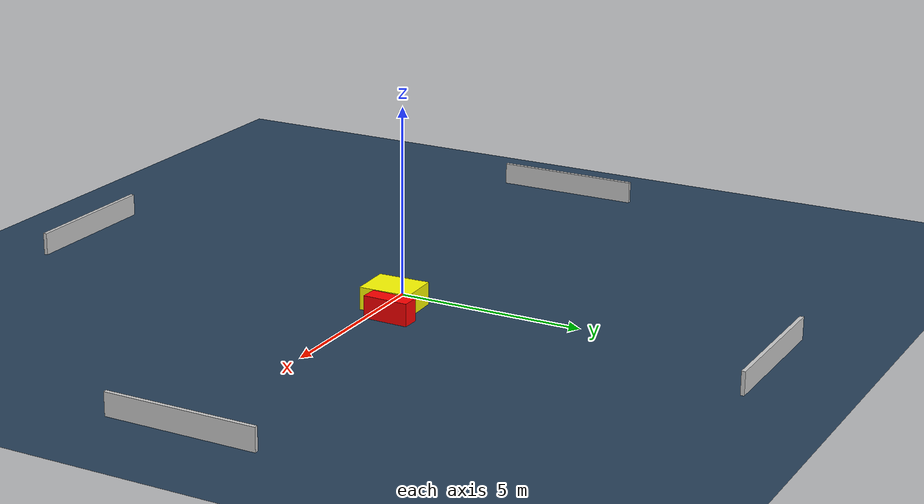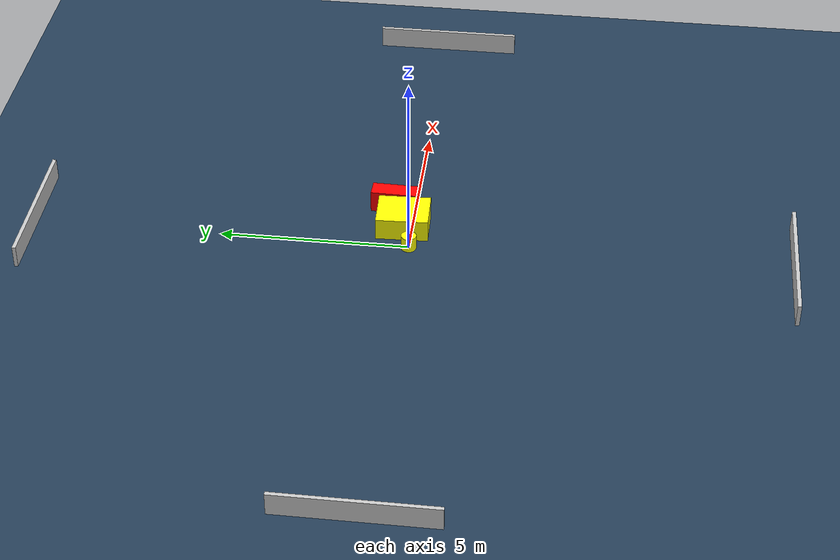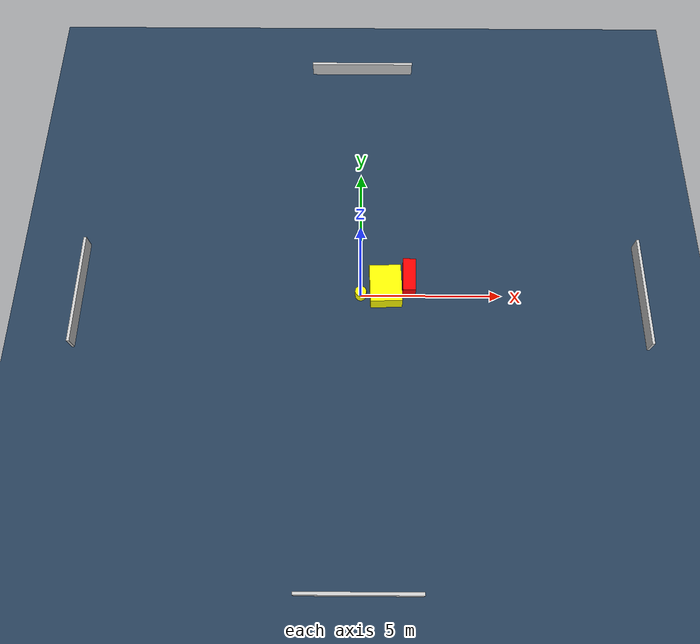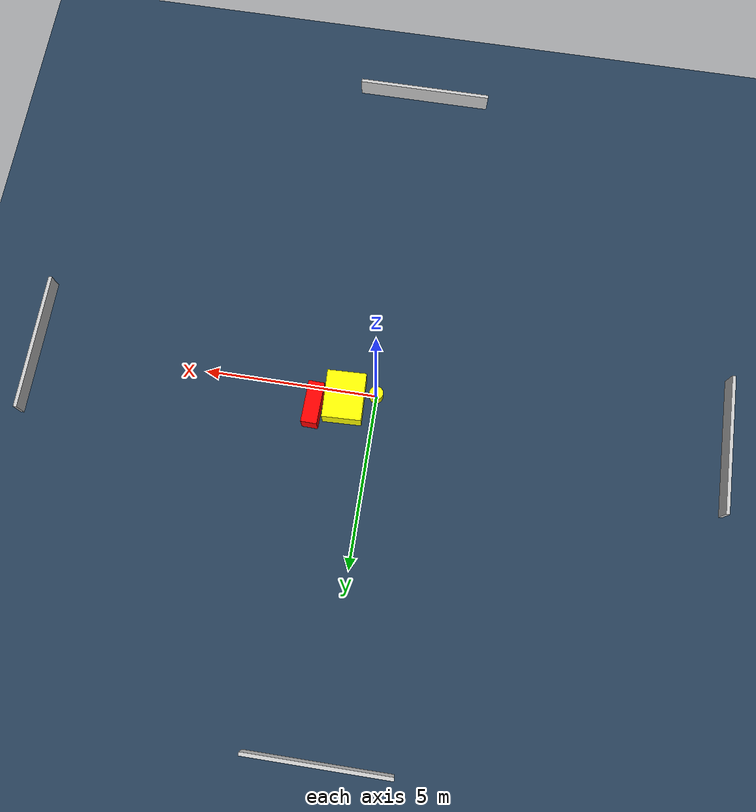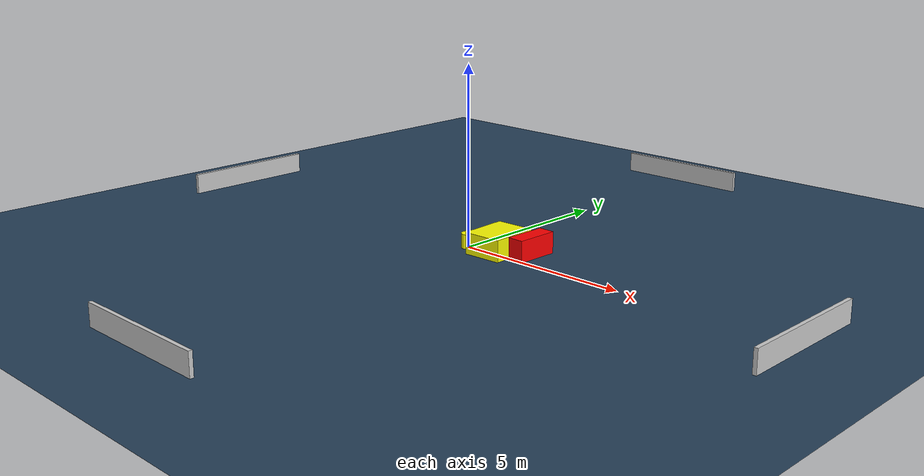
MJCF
<?xml version="1.0" ?>
<mujoco model="generated_environment">
  <option timestep="0.01" integrator="RK4" cone="elliptic"/>
  <default>
    <geom density="1"/>
  </default>
  <asset>
    <texture builtin="gradient" height="3072" name="skybox" rgb1="0.3 0.5 0.7" rgb2="0 0 0" type="skybox" width="512"/>
    <texture builtin="checker" height="300" name="groundplane" rgb1="0.2 0.3 0.4" rgb2="0.1 0.2 0.3" type="2d" width="300"/>
    <material name="groundplane" reflectance="0.2" texrepeat="5 5" texture="groundplane"/>
  </asset>
  <worldbody>
    <light dir="0 0 -1" directional="true" pos="0 0 1.5"/>
    <geom condim="3" friction="0.5 0.005 0.001" material="groundplane" name="floor" pos="0 0 0" size="0 0 0.05" type="plane"/>
    <body name="walls">
      <geom name="wall_1" condim="4" pos="-10.0 0.0 0.3" rgba="0.800000011920929 0.800000011920929 0.800000011920929 1.0" size="0.05 2.0 0.3" type="box"/>
      <geom name="wall_2" condim="4" pos="10.0 0.0 0.3" rgba="0.800000011920929 0.800000011920929 0.800000011920929 1.0" size="0.05 2.0 0.3" type="box"/>
      <geom name="wall_3" condim="4" pos="0.0 -10.0 0.3" rgba="0.800000011920929 0.800000011920929 0.800000011920929 1.0" size="2.0 0.05 0.3" type="box"/>
      <geom name="wall_4" condim="4" pos="0.0 10.0 0.3" rgba="0.800000011920929 0.800000011920929 0.800000011920929 1.0" size="2.0 0.05 0.3" type="box"/>
    </body>
    <body name="robot">
      <joint name="joint_x" type="slide" pos="0 0 0" axis="1 0 0"/>
      <joint name="joint_y" type="slide" pos="0 0 0" axis="0 1 0"/>
      <geom name="robot" type="cylinder" pos="0.0 0.0 0.2" size="0.2 0.2 0.0" mass="5.0" friction="1.0 0.005 0.0001" condim="4" rgba="1.0 1.0 0.0 1.0"/>
    </body>
    <body name="obstacle_1_movable">
      <geom name="obstacle_1_movable" condim="4" pos="0.881345832869295 0.24735975778053187 0.3" euler="0 0 272.10574192294933" friction="0.0 0.005 0.001" rgba="1.0 1.0 0.0 1.0" size="0.6937463094481036 0.5626074109349753 0.3" type="box" mass="0.1"/>
      <joint type="free"/>
    </body>
    <body name="obstacle_2_static">
      <geom name="obstacle_2_static" condim="4" pos="1.7272063891672045 0.588172587712435 0.3" euler="0 0 88.6592266724417" friction="0.0 0.005 0.001" rgba="1.0 0.0 0.0 1.0" size="0.6084779832050755 0.22994269899350173 0.3" type="box"/>
    </body>
  </worldbody>
  <actuator>
    <motor name="actuator_x" joint="joint_x" gear="1" ctrlrange="-1 1"/>
    <motor name="actuator_y" joint="joint_y" gear="1" ctrlrange="-1 1"/>
  </actuator>
</mujoco>
